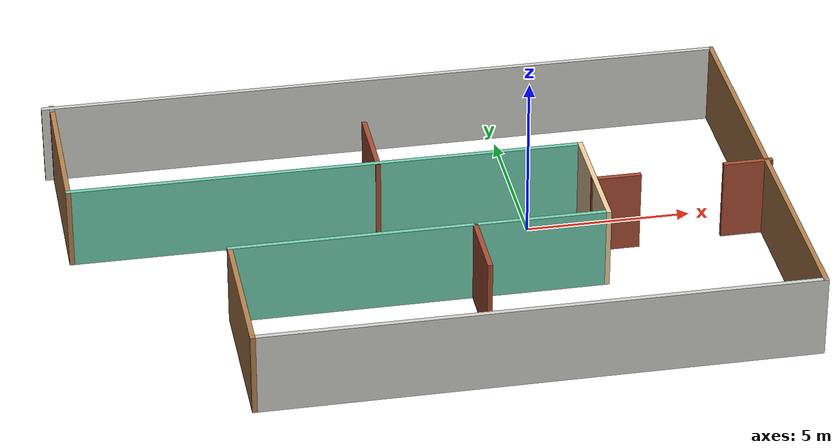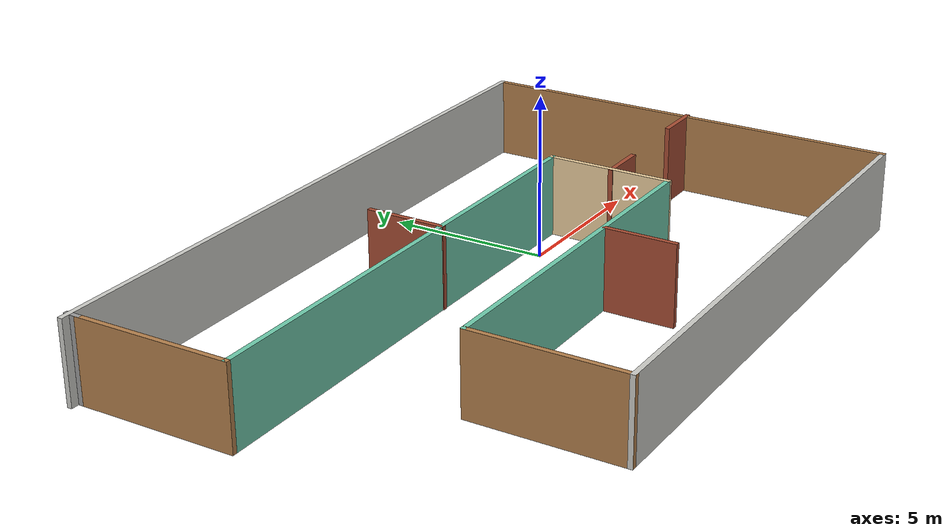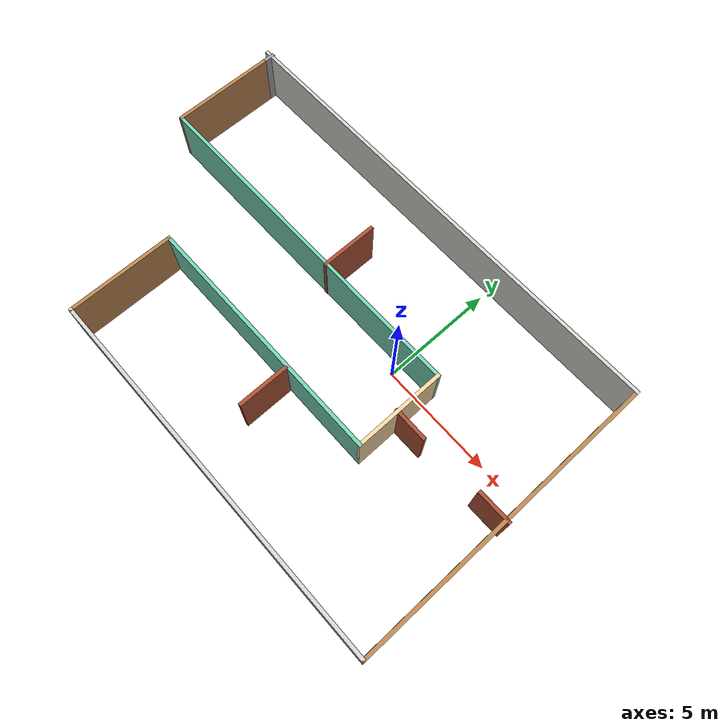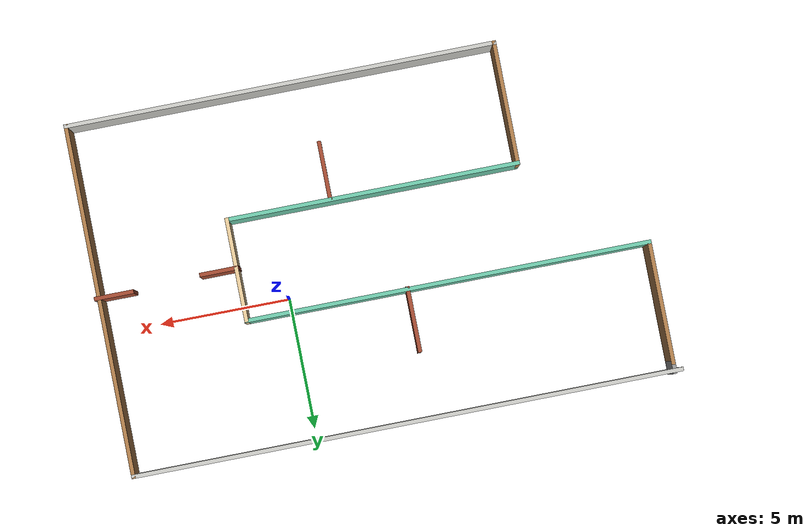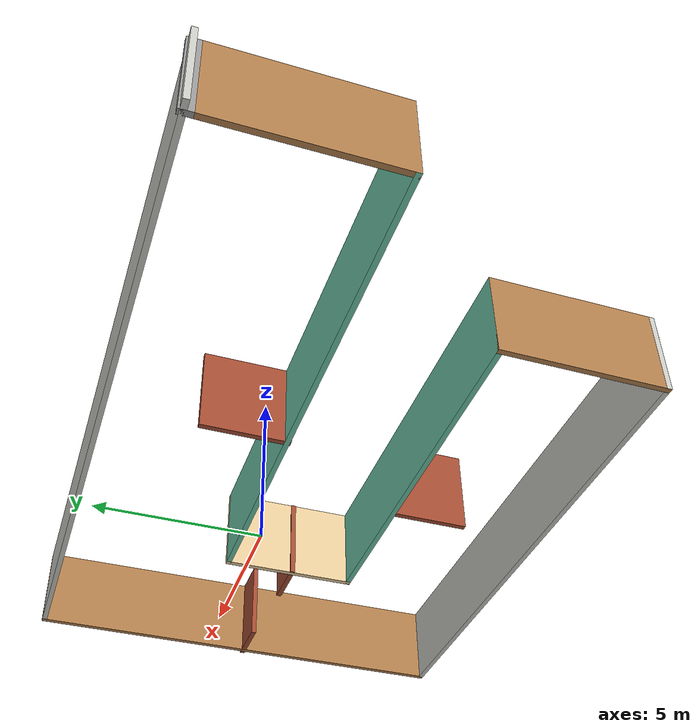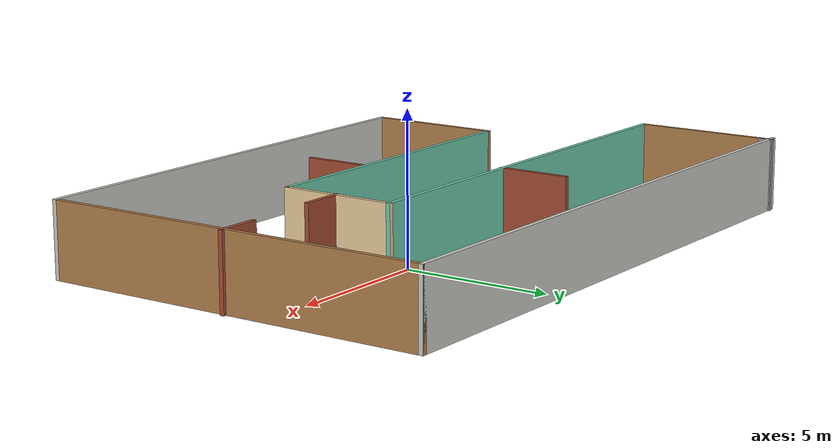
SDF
<?xml version='1.0'?>
<sdf version='1.6'>
  <model name='MyBuilding3'>
    <pose frame=''>-3.4182 -1.19674 0 0 -0 0</pose>
    <link name='Wall_0'>
      <collision name='Wall_0_Collision'>
        <geometry>
          <box>
            <size>21 0.15 2.5</size>
          </box>
        </geometry>
        <pose frame=''>0 0 1.25 0 -0 0</pose>
      </collision>
      <visual name='Wall_0_Visual'>
        <pose frame=''>0 0 1.25 0 -0 0</pose>
        <geometry>
          <box>
            <size>21 0.15 2.5</size>
          </box>
        </geometry>
        <material>
          <script>
            <uri>file://media/materials/scripts/gazebo.material</uri>
            <name>Gazebo/CeilingTiled</name>
          </script>
          <ambient>1 1 1 1</ambient>
        </material>
        <meta>
          <layer>0</layer>
        </meta>
      </visual>
      <pose frame=''>-0.052153 6.65 0 0 -0 0</pose>
    </link>
    <link name='Wall_1'>
      <collision name='Wall_1_Collision'>
        <geometry>
          <box>
            <size>13.5 0.15 2.5</size>
          </box>
        </geometry>
        <pose frame=''>0 0 1.25 0 -0 0</pose>
      </collision>
      <visual name='Wall_1_Visual'>
        <pose frame=''>0 0 1.25 0 -0 0</pose>
        <geometry>
          <box>
            <size>13.5 0.15 2.5</size>
          </box>
        </geometry>
        <material>
          <script>
            <uri>file://media/materials/scripts/gazebo.material</uri>
            <name>Gazebo/Wood</name>
          </script>
          <ambient>1 1 1 1</ambient>
        </material>
        <meta>
          <layer>0</layer>
        </meta>
      </visual>
      <pose frame=''>10.3728 -0.025 0 0 0 -1.5708</pose>
    </link>
    <link name='Wall_10'>
      <collision name='Wall_10_Collision'>
        <geometry>
          <box>
            <size>2.5 0.15 2.5</size>
          </box>
        </geometry>
        <pose frame=''>0 0 1.25 0 -0 0</pose>
      </collision>
      <visual name='Wall_10_Visual'>
        <pose frame=''>0 0 1.25 0 -0 0</pose>
        <geometry>
          <box>
            <size>2.5 0.15 2.5</size>
          </box>
        </geometry>
        <material>
          <script>
            <uri>file://media/materials/scripts/gazebo.material</uri>
            <name>Gazebo/Bricks</name>
          </script>
          <ambient>1 1 1 1</ambient>
        </material>
        <meta>
          <layer>0</layer>
        </meta>
      </visual>
      <pose frame=''>-1.02477 2.89997 0 0 -0 1.5708</pose>
    </link>
    <link name='Wall_12'>
      <collision name='Wall_12_Collision'>
        <geometry>
          <box>
            <size>2.25 0.15 2.5</size>
          </box>
        </geometry>
        <pose frame=''>0 0 1.25 0 -0 0</pose>
      </collision>
      <visual name='Wall_12_Visual'>
        <pose frame=''>0 0 1.25 0 -0 0</pose>
        <geometry>
          <box>
            <size>2.25 0.15 2.5</size>
          </box>
        </geometry>
        <material>
          <script>
            <uri>file://media/materials/scripts/gazebo.material</uri>
            <name>Gazebo/Bricks</name>
          </script>
          <ambient>1 1 1 1</ambient>
        </material>
        <meta>
          <layer>0</layer>
        </meta>
      </visual>
      <pose frame=''>1.17772 -3.20999 0 0 0 -1.5708</pose>
    </link>
    <link name='Wall_14'>
      <collision name='Wall_14_Collision'>
        <geometry>
          <box>
            <size>1.5 0.15 2.5</size>
          </box>
        </geometry>
        <pose frame=''>0 0 1.25 0 -0 0</pose>
      </collision>
      <visual name='Wall_14_Visual'>
        <pose frame=''>0 0 1.25 0 -0 0</pose>
        <geometry>
          <box>
            <size>1.5 0.15 2.5</size>
          </box>
        </geometry>
        <material>
          <script>
            <uri>file://media/materials/scripts/gazebo.material</uri>
            <name>Gazebo/Bricks</name>
          </script>
          <ambient>0.921569 0.807843 0.615686 1</ambient>
        </material>
        <meta>
          <layer>0</layer>
        </meta>
      </visual>
      <pose frame=''>9.80215 -0.14103 0 0 -0 3.14159</pose>
    </link>
    <link name='Wall_16'>
      <collision name='Wall_16_Collision'>
        <geometry>
          <box>
            <size>1.5 0.15 2.5</size>
          </box>
        </geometry>
        <pose frame=''>0 0 1.25 0 -0 0</pose>
      </collision>
      <visual name='Wall_16_Visual'>
        <pose frame=''>0 0 1.25 0 -0 0</pose>
        <geometry>
          <box>
            <size>1.5 0.15 2.5</size>
          </box>
        </geometry>
        <material>
          <script>
            <uri>file://media/materials/scripts/gazebo.material</uri>
            <name>Gazebo/Bricks</name>
          </script>
          <ambient>0.921569 0.807843 0.615686 1</ambient>
        </material>
        <meta>
          <layer>0</layer>
        </meta>
      </visual>
      <pose frame=''>5.76827 -0.263391 0 0 -0 0</pose>
    </link>
    <link name='Wall_2'>
      <collision name='Wall_2_Collision'>
        <geometry>
          <box>
            <size>16.5 0.15 2.5</size>
          </box>
        </geometry>
        <pose frame=''>0 0 1.25 0 -0 0</pose>
      </collision>
      <visual name='Wall_2_Visual'>
        <pose frame=''>0 0 1.25 0 -0 0</pose>
        <geometry>
          <box>
            <size>16.5 0.15 2.5</size>
          </box>
        </geometry>
        <material>
          <script>
            <uri>file://media/materials/scripts/gazebo.material</uri>
            <name>Gazebo/CeilingTiled</name>
          </script>
          <ambient>1 1 1 1</ambient>
        </material>
        <meta>
          <layer>0</layer>
        </meta>
      </visual>
      <pose frame=''>2.19785 -6.7 0 0 -0 3.14159</pose>
    </link>
    <link name='Wall_3'>
      <collision name='Wall_3_Collision'>
        <geometry>
          <box>
            <size>4.75 0.15 2.5</size>
          </box>
        </geometry>
        <pose frame=''>0 0 1.25 0 -0 0</pose>
      </collision>
      <visual name='Wall_3_Visual'>
        <pose frame=''>0 0 1.25 0 -0 0</pose>
        <geometry>
          <box>
            <size>4.75 0.15 2.5</size>
          </box>
        </geometry>
        <material>
          <script>
            <uri>file://media/materials/scripts/gazebo.material</uri>
            <name>Gazebo/Wood</name>
          </script>
          <ambient>1 1 1 1</ambient>
        </material>
        <meta>
          <layer>0</layer>
        </meta>
      </visual>
      <pose frame=''>-5.97715 -4.4 0 0 -0 1.5708</pose>
    </link>
    <link name='Wall_4'>
      <collision name='Wall_4_Collision'>
        <geometry>
          <box>
            <size>11.25 0.15 2.5</size>
          </box>
        </geometry>
        <pose frame=''>0 0 1.25 0 -0 0</pose>
      </collision>
      <visual name='Wall_4_Visual'>
        <pose frame=''>0 0 1.25 0 -0 0</pose>
        <geometry>
          <box>
            <size>11.25 0.15 2.5</size>
          </box>
        </geometry>
        <material>
          <script>
            <uri>file://media/materials/scripts/gazebo.material</uri>
            <name>Gazebo/Grey</name>
          </script>
          <ambient>0.435294 0.796078 0.67451 1</ambient>
        </material>
        <meta>
          <layer>0</layer>
        </meta>
      </visual>
      <pose frame=''>-0.427153 -2.1 0 0 -0 0</pose>
    </link>
    <link name='Wall_5'>
      <collision name='Wall_5_Collision'>
        <geometry>
          <box>
            <size>4 0.15 2.5</size>
          </box>
        </geometry>
        <pose frame=''>0 0 1.25 0 -0 0</pose>
      </collision>
      <visual name='Wall_5_Visual'>
        <pose frame=''>0 0 1.25 0 -0 0</pose>
        <geometry>
          <box>
            <size>4 0.15 2.5</size>
          </box>
        </geometry>
        <material>
          <script>
            <uri>file://media/materials/scripts/gazebo.material</uri>
            <name>Gazebo/Grey</name>
          </script>
          <ambient>0.921569 0.807843 0.615686 1</ambient>
        </material>
        <meta>
          <layer>0</layer>
        </meta>
      </visual>
      <pose frame=''>5.12285 -0.175 0 0 -0 1.5708</pose>
    </link>
    <link name='Wall_6'>
      <collision name='Wall_6_Collision'>
        <geometry>
          <box>
            <size>15.5 0.15 2.5</size>
          </box>
        </geometry>
        <pose frame=''>0 0 1.25 0 -0 0</pose>
      </collision>
      <visual name='Wall_6_Visual'>
        <pose frame=''>0 0 1.25 0 -0 0</pose>
        <geometry>
          <box>
            <size>15.5 0.15 2.5</size>
          </box>
        </geometry>
        <material>
          <script>
            <uri>file://media/materials/scripts/gazebo.material</uri>
            <name>Gazebo/Grey</name>
          </script>
          <ambient>0.435294 0.796078 0.67451 1</ambient>
        </material>
        <meta>
          <layer>0</layer>
        </meta>
      </visual>
      <pose frame=''>-2.55215 1.75 0 0 -0 3.14159</pose>
    </link>
    <link name='Wall_7'>
      <collision name='Wall_7_Collision'>
        <geometry>
          <box>
            <size>4.75 0.15 2.5</size>
          </box>
        </geometry>
        <pose frame=''>0 0 1.25 0 -0 0</pose>
      </collision>
      <visual name='Wall_7_Visual'>
        <pose frame=''>0 0 1.25 0 -0 0</pose>
        <geometry>
          <box>
            <size>4.75 0.15 2.5</size>
          </box>
        </geometry>
        <material>
          <script>
            <uri>file://media/materials/scripts/gazebo.material</uri>
            <name>Gazebo/Wood</name>
          </script>
          <ambient>1 1 1 1</ambient>
        </material>
        <meta>
          <layer>0</layer>
        </meta>
      </visual>
      <pose frame=''>-10.2272 4.05 0 0 -0 1.5708</pose>
    </link>
    <link name='Wall_8'>
      <collision name='Wall_8_Collision'>
        <geometry>
          <box>
            <size>0.5 0.15 2.5</size>
          </box>
        </geometry>
        <pose frame=''>0 0 1.25 0 -0 0</pose>
      </collision>
      <visual name='Wall_8_Visual'>
        <pose frame=''>0 0 1.25 0 -0 0</pose>
        <geometry>
          <box>
            <size>0.5 0.15 2.5</size>
          </box>
        </geometry>
        <material>
          <script>
            <uri>file://media/materials/scripts/gazebo.material</uri>
            <name>Gazebo/Grey</name>
          </script>
          <ambient>1 1 1 1</ambient>
        </material>
        <meta>
          <layer>0</layer>
        </meta>
      </visual>
      <pose frame=''>-10.2272 6.525 0 0 -0 1.5708</pose>
    </link>
    <static>1</static>
  </model>
</sdf>
